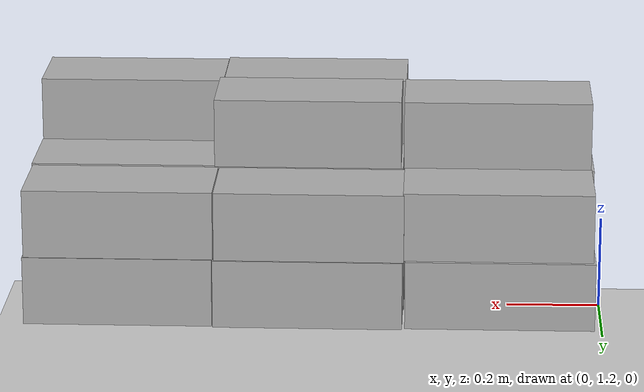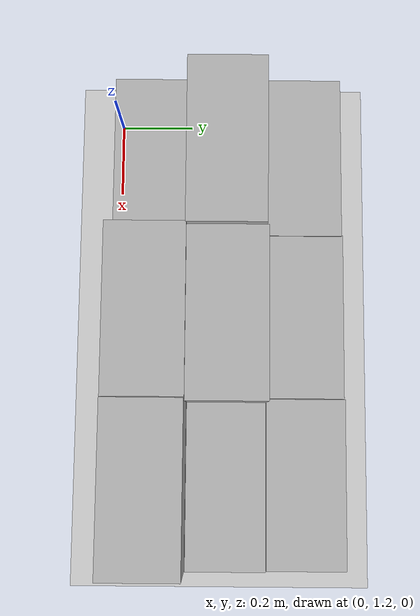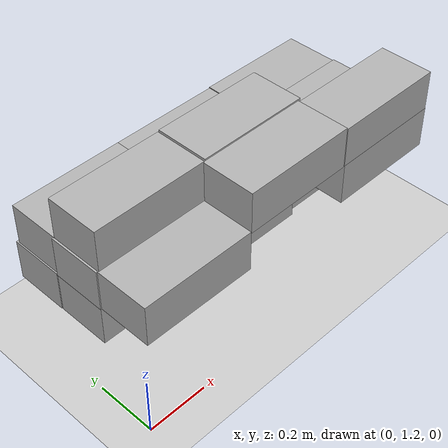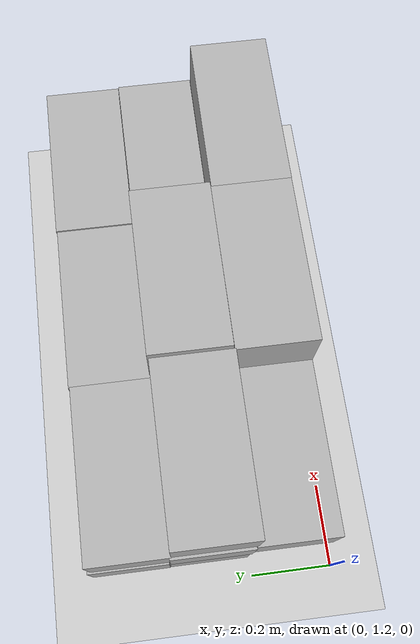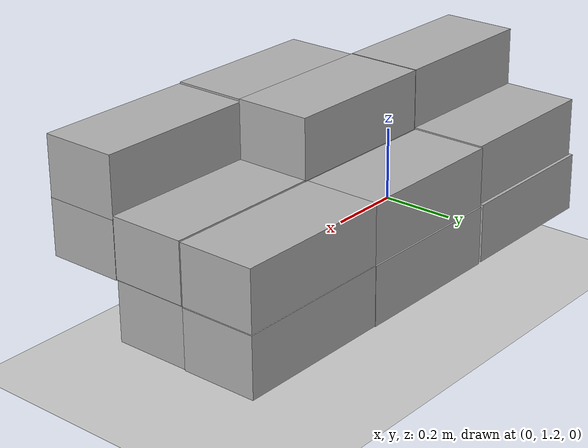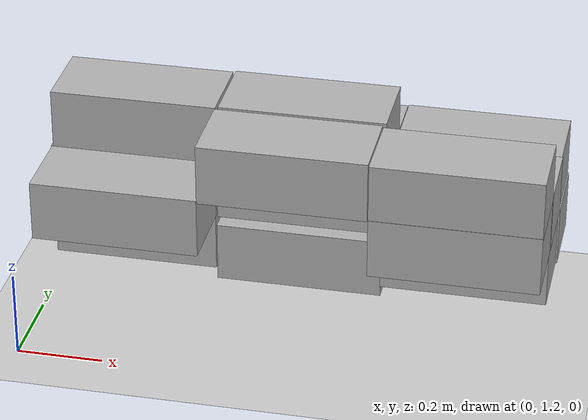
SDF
<sdf version="1.7">
 <world name="default">
  <model name="ground_plane">
   <static>1</static>
   <link name="link">
    <collision name="collision">
     <geometry><plane><normal>0 0 1</normal><size>100 100</size></plane></geometry>
     <surface>
      <contact><collide_bitmask>65535</collide_bitmask></contact>
      <friction><ode><mu>100</mu><mu2>50</mu2></ode></friction>
     </surface>
    </collision>
    <visual name="visual">
     <cast_shadows>0</cast_shadows>
     <geometry><plane><normal>0 0 1</normal><size>100 100</size></plane></geometry>
     <material>
      <script><uri>file://media/materials/scripts/gazebo.material</uri><name>Gazebo/Gray</name></script>
     </material>
    </visual>
   </link>
  </model>
  <model name="box_38_18_14_7">
   <link name="link_0">
    <inertial>
     <mass>2.5</mass>
     <inertia>
      <ixx>0.0108332</ixx>
      <ixy>0</ixy>
      <ixz>0</ixz>
      <iyy>0.0341665</iyy>
      <iyz>0</iyz>
      <izz>0.0368332</izz>
     </inertia>
    </inertial>
    <visual name="visual">
     <geometry><box><size>0.38 0.18 0.14</size></box></geometry>
     <material>
      <lighting>1</lighting>
      <script><uri>file://media/materials/scripts/cardpaper.material</uri><name>cardpaper</name></script>
      <shader type="pixel"><normal_map>__default__</normal_map></shader>
      <ambient>0.3 0.3 0.3 1</ambient>
      <diffuse>0.7 0.7 0.7 1</diffuse>
      <specular>0.01 0.01 0.01 1</specular>
      <emissive>0 0 0 1</emissive>
     </material>
    </visual>
    <collision name="collision">
     <geometry><box><size>0.38 0.18 0.14</size></box></geometry>
     <surface>
      <friction>
       <ode><mu>0.6</mu><mu2>0.6</mu2><fdir1>0 0 0</fdir1><slip1>0</slip1><slip2>0</slip2></ode>
       <torsional>
        <coefficient>1</coefficient>
        <patch_radius>0</patch_radius>
        <surface_radius>0</surface_radius>
        <use_patch_radius>1</use_patch_radius>
        <ode><slip>0</slip></ode>
       </torsional>
      </friction>
      <bounce><restitution_coefficient>0</restitution_coefficient><threshold>1e+06</threshold></bounce>
      <contact>
       <collide_without_contact>0</collide_without_contact>
       <collide_without_contact_bitmask>1</collide_without_contact_bitmask>
       <collide_bitmask>1</collide_bitmask>
       <ode>
        <soft_cfm>0</soft_cfm>
        <soft_erp>0.2</soft_erp>
        <kp>1e+13</kp>
        <kd>1</kd>
        <max_vel>0.01</max_vel>
        <min_depth>0.01</min_depth>
       </ode>
       <bullet>
        <split_impulse>1</split_impulse>
        <split_impulse_penetration_threshold>-0.01</split_impulse_penetration_threshold>
        <soft_cfm>0</soft_cfm>
        <soft_erp>0.2</soft_erp>
        <kp>1e+13</kp>
        <kd>1</kd>
       </bullet>
      </contact>
     </surface>
    </collision>
   </link>
   <static>1</static>
   <pose>0.990184 1.50391 0.216547 2.8e-05 -2e-05 -0.000315</pose>
  </model>
  <model name="box_38_18_14_8">
   <link name="link_0">
    <inertial>
     <mass>2.5</mass>
     <inertia>
      <ixx>0.0108332</ixx>
      <ixy>0</ixy>
      <ixz>0</ixz>
      <iyy>0.0341665</iyy>
      <iyz>0</iyz>
      <izz>0.0368332</izz>
     </inertia>
    </inertial>
    <visual name="visual">
     <geometry><box><size>0.38 0.18 0.14</size></box></geometry>
     <material>
      <lighting>1</lighting>
      <script><uri>file://media/materials/scripts/cardpaper.material</uri><name>cardpaper</name></script>
      <shader type="pixel"><normal_map>__default__</normal_map></shader>
      <ambient>0.3 0.3 0.3 1</ambient>
      <diffuse>0.7 0.7 0.7 1</diffuse>
      <specular>0.01 0.01 0.01 1</specular>
      <emissive>0 0 0 1</emissive>
     </material>
    </visual>
    <collision name="collision">
     <geometry><box><size>0.38 0.18 0.14</size></box></geometry>
     <surface>
      <friction>
       <ode><mu>0.6</mu><mu2>0.6</mu2><fdir1>0 0 0</fdir1><slip1>0</slip1><slip2>0</slip2></ode>
       <torsional>
        <coefficient>1</coefficient>
        <patch_radius>0</patch_radius>
        <surface_radius>0</surface_radius>
        <use_patch_radius>1</use_patch_radius>
        <ode><slip>0</slip></ode>
       </torsional>
      </friction>
      <bounce><restitution_coefficient>0</restitution_coefficient><threshold>1e+06</threshold></bounce>
      <contact>
       <collide_without_contact>0</collide_without_contact>
       <collide_without_contact_bitmask>1</collide_without_contact_bitmask>
       <collide_bitmask>1</collide_bitmask>
       <ode>
        <soft_cfm>0</soft_cfm>
        <soft_erp>0.2</soft_erp>
        <kp>1e+13</kp>
        <kd>1</kd>
        <max_vel>0.01</max_vel>
        <min_depth>0.01</min_depth>
       </ode>
       <bullet>
        <split_impulse>1</split_impulse>
        <split_impulse_penetration_threshold>-0.01</split_impulse_penetration_threshold>
        <soft_cfm>0</soft_cfm>
        <soft_erp>0.2</soft_erp>
        <kp>1e+13</kp>
        <kd>1</kd>
       </bullet>
      </contact>
     </surface>
    </collision>
   </link>
   <static>1</static>
   <pose>0.611731 1.50421 0.192002 2.6e-05 -2e-05 -3.2e-05</pose>
  </model>
  <model name="box_38_18_14_9">
   <link name="link_0">
    <inertial>
     <mass>2.5</mass>
     <inertia>
      <ixx>0.0108332</ixx>
      <ixy>0</ixy>
      <ixz>0</ixz>
      <iyy>0.0341665</iyy>
      <iyz>0</iyz>
      <izz>0.0368332</izz>
     </inertia>
    </inertial>
    <visual name="visual">
     <geometry><box><size>0.38 0.18 0.14</size></box></geometry>
     <material>
      <lighting>1</lighting>
      <script><uri>file://media/materials/scripts/cardpaper.material</uri><name>cardpaper</name></script>
      <shader type="pixel"><normal_map>__default__</normal_map></shader>
      <ambient>0.3 0.3 0.3 1</ambient>
      <diffuse>0.7 0.7 0.7 1</diffuse>
      <specular>0.01 0.01 0.01 1</specular>
      <emissive>0 0 0 1</emissive>
     </material>
    </visual>
    <collision name="collision">
     <geometry><box><size>0.38 0.18 0.14</size></box></geometry>
     <surface>
      <friction>
       <ode><mu>0.6</mu><mu2>0.6</mu2><fdir1>0 0 0</fdir1><slip1>0</slip1><slip2>0</slip2></ode>
       <torsional>
        <coefficient>1</coefficient>
        <patch_radius>0</patch_radius>
        <surface_radius>0</surface_radius>
        <use_patch_radius>1</use_patch_radius>
        <ode><slip>0</slip></ode>
       </torsional>
      </friction>
      <bounce><restitution_coefficient>0</restitution_coefficient><threshold>1e+06</threshold></bounce>
      <contact>
       <collide_without_contact>0</collide_without_contact>
       <collide_without_contact_bitmask>1</collide_without_contact_bitmask>
       <collide_bitmask>1</collide_bitmask>
       <ode>
        <soft_cfm>0</soft_cfm>
        <soft_erp>0.2</soft_erp>
        <kp>1e+13</kp>
        <kd>1</kd>
        <max_vel>0.01</max_vel>
        <min_depth>0.01</min_depth>
       </ode>
       <bullet>
        <split_impulse>1</split_impulse>
        <split_impulse_penetration_threshold>-0.01</split_impulse_penetration_threshold>
        <soft_cfm>0</soft_cfm>
        <soft_erp>0.2</soft_erp>
        <kp>1e+13</kp>
        <kd>1</kd>
       </bullet>
      </contact>
     </surface>
    </collision>
   </link>
   <static>1</static>
   <pose>0.228512 1.50611 0.218021 2.9e-05 -2e-05 0.000472</pose>
  </model>
  <model name="box_38_18_14_10">
   <link name="link_0">
    <inertial>
     <mass>2.5</mass>
     <inertia>
      <ixx>0.0108332</ixx>
      <ixy>0</ixy>
      <ixz>0</ixz>
      <iyy>0.0341665</iyy>
      <iyz>0</iyz>
      <izz>0.0368332</izz>
     </inertia>
    </inertial>
    <visual name="visual">
     <geometry><box><size>0.38 0.18 0.14</size></box></geometry>
     <material>
      <lighting>1</lighting>
      <script><uri>file://media/materials/scripts/cardpaper.material</uri><name>cardpaper</name></script>
      <shader type="pixel"><normal_map>__default__</normal_map></shader>
      <ambient>0.3 0.3 0.3 1</ambient>
      <diffuse>0.7 0.7 0.7 1</diffuse>
      <specular>0.01 0.01 0.01 1</specular>
      <emissive>0 0 0 1</emissive>
     </material>
    </visual>
    <collision name="collision">
     <geometry><box><size>0.38 0.18 0.14</size></box></geometry>
     <surface>
      <friction>
       <ode><mu>0.6</mu><mu2>0.6</mu2><fdir1>0 0 0</fdir1><slip1>0</slip1><slip2>0</slip2></ode>
       <torsional>
        <coefficient>1</coefficient>
        <patch_radius>0</patch_radius>
        <surface_radius>0</surface_radius>
        <use_patch_radius>1</use_patch_radius>
        <ode><slip>0</slip></ode>
       </torsional>
      </friction>
      <bounce><restitution_coefficient>0</restitution_coefficient><threshold>1e+06</threshold></bounce>
      <contact>
       <collide_without_contact>0</collide_without_contact>
       <collide_without_contact_bitmask>1</collide_without_contact_bitmask>
       <collide_bitmask>1</collide_bitmask>
       <ode>
        <soft_cfm>0</soft_cfm>
        <soft_erp>0.2</soft_erp>
        <kp>1e+13</kp>
        <kd>1</kd>
        <max_vel>0.01</max_vel>
        <min_depth>0.01</min_depth>
       </ode>
       <bullet>
        <split_impulse>1</split_impulse>
        <split_impulse_penetration_threshold>-0.01</split_impulse_penetration_threshold>
        <soft_cfm>0</soft_cfm>
        <soft_erp>0.2</soft_erp>
        <kp>1e+13</kp>
        <kd>1</kd>
       </bullet>
      </contact>
     </surface>
    </collision>
   </link>
   <static>1</static>
   <pose>0.993831 1.68679 0.217454 2.6e-05 -2e-05 0.000237</pose>
  </model>
  <model name="box_38_18_14_11">
   <link name="link_0">
    <inertial>
     <mass>2.5</mass>
     <inertia>
      <ixx>0.0108332</ixx>
      <ixy>0</ixy>
      <ixz>0</ixz>
      <iyy>0.0341665</iyy>
      <iyz>0</iyz>
      <izz>0.0368332</izz>
     </inertia>
    </inertial>
    <visual name="visual">
     <geometry><box><size>0.38 0.18 0.14</size></box></geometry>
     <material>
      <lighting>1</lighting>
      <script><uri>file://media/materials/scripts/cardpaper.material</uri><name>cardpaper</name></script>
      <shader type="pixel"><normal_map>__default__</normal_map></shader>
      <ambient>0.3 0.3 0.3 1</ambient>
      <diffuse>0.7 0.7 0.7 1</diffuse>
      <specular>0.01 0.01 0.01 1</specular>
      <emissive>0 0 0 1</emissive>
     </material>
    </visual>
    <collision name="collision">
     <geometry><box><size>0.38 0.18 0.14</size></box></geometry>
     <surface>
      <friction>
       <ode><mu>0.6</mu><mu2>0.6</mu2><fdir1>0 0 0</fdir1><slip1>0</slip1><slip2>0</slip2></ode>
       <torsional>
        <coefficient>1</coefficient>
        <patch_radius>0</patch_radius>
        <surface_radius>0</surface_radius>
        <use_patch_radius>1</use_patch_radius>
        <ode><slip>0</slip></ode>
       </torsional>
      </friction>
      <bounce><restitution_coefficient>0</restitution_coefficient><threshold>1e+06</threshold></bounce>
      <contact>
       <collide_without_contact>0</collide_without_contact>
       <collide_without_contact_bitmask>1</collide_without_contact_bitmask>
       <collide_bitmask>1</collide_bitmask>
       <ode>
        <soft_cfm>0</soft_cfm>
        <soft_erp>0.2</soft_erp>
        <kp>1e+13</kp>
        <kd>1</kd>
        <max_vel>0.01</max_vel>
        <min_depth>0.01</min_depth>
       </ode>
       <bullet>
        <split_impulse>1</split_impulse>
        <split_impulse_penetration_threshold>-0.01</split_impulse_penetration_threshold>
        <soft_cfm>0</soft_cfm>
        <soft_erp>0.2</soft_erp>
        <kp>1e+13</kp>
        <kd>1</kd>
       </bullet>
      </contact>
     </surface>
    </collision>
   </link>
   <static>1</static>
   <pose>0.612289 1.68672 0.215492 2.9e-05 -2.3e-05 -0.001084</pose>
  </model>
  <model name="box_38_18_14_12">
   <link name="link_0">
    <inertial>
     <mass>2.5</mass>
     <inertia>
      <ixx>0.0108332</ixx>
      <ixy>0</ixy>
      <ixz>0</ixz>
      <iyy>0.0341665</iyy>
      <iyz>0</iyz>
      <izz>0.0368332</izz>
     </inertia>
    </inertial>
    <visual name="visual">
     <geometry><box><size>0.38 0.18 0.14</size></box></geometry>
     <material>
      <lighting>1</lighting>
      <script><uri>file://media/materials/scripts/cardpaper.material</uri><name>cardpaper</name></script>
      <shader type="pixel"><normal_map>__default__</normal_map></shader>
      <ambient>0.3 0.3 0.3 1</ambient>
      <diffuse>0.7 0.7 0.7 1</diffuse>
      <specular>0.01 0.01 0.01 1</specular>
      <emissive>0 0 0 1</emissive>
     </material>
    </visual>
    <collision name="collision">
     <geometry><box><size>0.38 0.18 0.14</size></box></geometry>
     <surface>
      <friction>
       <ode><mu>0.6</mu><mu2>0.6</mu2><fdir1>0 0 0</fdir1><slip1>0</slip1><slip2>0</slip2></ode>
       <torsional>
        <coefficient>1</coefficient>
        <patch_radius>0</patch_radius>
        <surface_radius>0</surface_radius>
        <use_patch_radius>1</use_patch_radius>
        <ode><slip>0</slip></ode>
       </torsional>
      </friction>
      <bounce><restitution_coefficient>0</restitution_coefficient><threshold>1e+06</threshold></bounce>
      <contact>
       <collide_without_contact>0</collide_without_contact>
       <collide_without_contact_bitmask>1</collide_without_contact_bitmask>
       <collide_bitmask>1</collide_bitmask>
       <ode>
        <soft_cfm>0</soft_cfm>
        <soft_erp>0.2</soft_erp>
        <kp>1e+13</kp>
        <kd>1</kd>
        <max_vel>0.01</max_vel>
        <min_depth>0.01</min_depth>
       </ode>
       <bullet>
        <split_impulse>1</split_impulse>
        <split_impulse_penetration_threshold>-0.01</split_impulse_penetration_threshold>
        <soft_cfm>0</soft_cfm>
        <soft_erp>0.2</soft_erp>
        <kp>1e+13</kp>
        <kd>1</kd>
       </bullet>
      </contact>
     </surface>
    </collision>
   </link>
   <static>1</static>
   <pose>0.226986 1.68817 0.218375 2.7e-05 -2.1e-05 0.000476</pose>
  </model>
  <model name="box_38_18_14_16">
   <link name="link_0">
    <inertial>
     <mass>2.5</mass>
     <inertia>
      <ixx>0.0108332</ixx>
      <ixy>0</ixy>
      <ixz>0</ixz>
      <iyy>0.0341665</iyy>
      <iyz>0</iyz>
      <izz>0.0368332</izz>
     </inertia>
    </inertial>
    <visual name="visual">
     <geometry><box><size>0.38 0.18 0.14</size></box></geometry>
     <material>
      <lighting>1</lighting>
      <script><uri>file://media/materials/scripts/cardpaper.material</uri><name>cardpaper</name></script>
      <shader type="pixel"><normal_map>__default__</normal_map></shader>
      <ambient>0.3 0.3 0.3 1</ambient>
      <diffuse>0.7 0.7 0.7 1</diffuse>
      <specular>0.01 0.01 0.01 1</specular>
      <emissive>0 0 0 1</emissive>
     </material>
    </visual>
    <collision name="collision">
     <geometry><box><size>0.38 0.18 0.14</size></box></geometry>
     <surface>
      <friction>
       <ode><mu>0.6</mu><mu2>0.6</mu2><fdir1>0 0 0</fdir1><slip1>0</slip1><slip2>0</slip2></ode>
       <torsional>
        <coefficient>1</coefficient>
        <patch_radius>0</patch_radius>
        <surface_radius>0</surface_radius>
        <use_patch_radius>1</use_patch_radius>
        <ode><slip>0</slip></ode>
       </torsional>
      </friction>
      <bounce><restitution_coefficient>0</restitution_coefficient><threshold>1e+06</threshold></bounce>
      <contact>
       <collide_without_contact>0</collide_without_contact>
       <collide_without_contact_bitmask>1</collide_without_contact_bitmask>
       <collide_bitmask>1</collide_bitmask>
       <ode>
        <soft_cfm>0</soft_cfm>
        <soft_erp>0.2</soft_erp>
        <kp>1e+13</kp>
        <kd>1</kd>
        <max_vel>0.01</max_vel>
        <min_depth>0.01</min_depth>
       </ode>
       <bullet>
        <split_impulse>1</split_impulse>
        <split_impulse_penetration_threshold>-0.01</split_impulse_penetration_threshold>
        <soft_cfm>0</soft_cfm>
        <soft_erp>0.2</soft_erp>
        <kp>1e+13</kp>
        <kd>1</kd>
       </bullet>
      </contact>
     </surface>
    </collision>
   </link>
   <static>1</static>
   <pose>0.230239 1.32434 0.357358 2.8e-05 -3e-06 -0.000162</pose>
  </model>
  <model name="box_38_18_14_18">
   <link name="link_0">
    <inertial>
     <mass>2.5</mass>
     <inertia>
      <ixx>0.0108332</ixx>
      <ixy>0</ixy>
      <ixz>0</ixz>
      <iyy>0.0341665</iyy>
      <iyz>0</iyz>
      <izz>0.0368332</izz>
     </inertia>
    </inertial>
    <visual name="visual">
     <geometry><box><size>0.38 0.18 0.14</size></box></geometry>
     <material>
      <lighting>1</lighting>
      <script><uri>file://media/materials/scripts/cardpaper.material</uri><name>cardpaper</name></script>
      <shader type="pixel"><normal_map>__default__</normal_map></shader>
      <ambient>0.3 0.3 0.3 1</ambient>
      <diffuse>0.7 0.7 0.7 1</diffuse>
      <specular>0.01 0.01 0.01 1</specular>
      <emissive>0 0 0 1</emissive>
     </material>
    </visual>
    <collision name="collision">
     <geometry><box><size>0.38 0.18 0.14</size></box></geometry>
     <surface>
      <friction>
       <ode><mu>0.6</mu><mu2>0.6</mu2><fdir1>0 0 0</fdir1><slip1>0</slip1><slip2>0</slip2></ode>
       <torsional>
        <coefficient>1</coefficient>
        <patch_radius>0</patch_radius>
        <surface_radius>0</surface_radius>
        <use_patch_radius>1</use_patch_radius>
        <ode><slip>0</slip></ode>
       </torsional>
      </friction>
      <bounce><restitution_coefficient>0</restitution_coefficient><threshold>1e+06</threshold></bounce>
      <contact>
       <collide_without_contact>0</collide_without_contact>
       <collide_without_contact_bitmask>1</collide_without_contact_bitmask>
       <collide_bitmask>1</collide_bitmask>
       <ode>
        <soft_cfm>0</soft_cfm>
        <soft_erp>0.2</soft_erp>
        <kp>1e+13</kp>
        <kd>1</kd>
        <max_vel>0.01</max_vel>
        <min_depth>0.01</min_depth>
       </ode>
       <bullet>
        <split_impulse>1</split_impulse>
        <split_impulse_penetration_threshold>-0.01</split_impulse_penetration_threshold>
        <soft_cfm>0</soft_cfm>
        <soft_erp>0.2</soft_erp>
        <kp>1e+13</kp>
        <kd>1</kd>
       </bullet>
      </contact>
     </surface>
    </collision>
   </link>
   <static>1</static>
   <pose>0.992285 1.32172 0.356242 0.000384 -6e-05 -0.000365</pose>
  </model>
  <model name="box_38_18_14_19">
   <link name="link_0">
    <inertial>
     <mass>2.5</mass>
     <inertia>
      <ixx>0.0108332</ixx>
      <ixy>0</ixy>
      <ixz>0</ixz>
      <iyy>0.0341665</iyy>
      <iyz>0</iyz>
      <izz>0.0368332</izz>
     </inertia>
    </inertial>
    <visual name="visual">
     <geometry><box><size>0.38 0.18 0.14</size></box></geometry>
     <material>
      <lighting>1</lighting>
      <script><uri>file://media/materials/scripts/cardpaper.material</uri><name>cardpaper</name></script>
      <shader type="pixel"><normal_map>__default__</normal_map></shader>
      <ambient>0.3 0.3 0.3 1</ambient>
      <diffuse>0.7 0.7 0.7 1</diffuse>
      <specular>0.01 0.01 0.01 1</specular>
      <emissive>0 0 0 1</emissive>
     </material>
    </visual>
    <collision name="collision">
     <geometry><box><size>0.38 0.18 0.14</size></box></geometry>
     <surface>
      <friction>
       <ode><mu>0.6</mu><mu2>0.6</mu2><fdir1>0 0 0</fdir1><slip1>0</slip1><slip2>0</slip2></ode>
       <torsional>
        <coefficient>1</coefficient>
        <patch_radius>0</patch_radius>
        <surface_radius>0</surface_radius>
        <use_patch_radius>1</use_patch_radius>
        <ode><slip>0</slip></ode>
       </torsional>
      </friction>
      <bounce><restitution_coefficient>0</restitution_coefficient><threshold>1e+06</threshold></bounce>
      <contact>
       <collide_without_contact>0</collide_without_contact>
       <collide_without_contact_bitmask>1</collide_without_contact_bitmask>
       <collide_bitmask>1</collide_bitmask>
       <ode>
        <soft_cfm>0</soft_cfm>
        <soft_erp>0.2</soft_erp>
        <kp>1e+13</kp>
        <kd>1</kd>
        <max_vel>0.01</max_vel>
        <min_depth>0.01</min_depth>
       </ode>
       <bullet>
        <split_impulse>1</split_impulse>
        <split_impulse_penetration_threshold>-0.01</split_impulse_penetration_threshold>
        <soft_cfm>0</soft_cfm>
        <soft_erp>0.2</soft_erp>
        <kp>1e+13</kp>
        <kd>1</kd>
       </bullet>
      </contact>
     </surface>
    </collision>
   </link>
   <static>1</static>
   <pose>0.614318 1.50153 0.357287 -0.000282 1e-05 6e-05</pose>
  </model>
  <model name="box_38_18_14_20">
   <link name="link_0">
    <inertial>
     <mass>2.5</mass>
     <inertia>
      <ixx>0.0108332</ixx>
      <ixy>0</ixy>
      <ixz>0</ixz>
      <iyy>0.0341665</iyy>
      <iyz>0</iyz>
      <izz>0.0368332</izz>
     </inertia>
    </inertial>
    <visual name="visual">
     <geometry><box><size>0.38 0.18 0.14</size></box></geometry>
     <material>
      <lighting>1</lighting>
      <script><uri>file://media/materials/scripts/cardpaper.material</uri><name>cardpaper</name></script>
      <shader type="pixel"><normal_map>__default__</normal_map></shader>
      <ambient>0.3 0.3 0.3 1</ambient>
      <diffuse>0.7 0.7 0.7 1</diffuse>
      <specular>0.01 0.01 0.01 1</specular>
      <emissive>0 0 0 1</emissive>
     </material>
    </visual>
    <collision name="collision">
     <geometry><box><size>0.38 0.18 0.14</size></box></geometry>
     <surface>
      <friction>
       <ode><mu>0.6</mu><mu2>0.6</mu2><fdir1>0 0 0</fdir1><slip1>0</slip1><slip2>0</slip2></ode>
       <torsional>
        <coefficient>1</coefficient>
        <patch_radius>0</patch_radius>
        <surface_radius>0</surface_radius>
        <use_patch_radius>1</use_patch_radius>
        <ode><slip>0</slip></ode>
       </torsional>
      </friction>
      <bounce><restitution_coefficient>0</restitution_coefficient><threshold>1e+06</threshold></bounce>
      <contact>
       <collide_without_contact>0</collide_without_contact>
       <collide_without_contact_bitmask>1</collide_without_contact_bitmask>
       <collide_bitmask>1</collide_bitmask>
       <ode>
        <soft_cfm>0</soft_cfm>
        <soft_erp>0.2</soft_erp>
        <kp>1e+13</kp>
        <kd>1</kd>
        <max_vel>0.01</max_vel>
        <min_depth>0.01</min_depth>
       </ode>
       <bullet>
        <split_impulse>1</split_impulse>
        <split_impulse_penetration_threshold>-0.01</split_impulse_penetration_threshold>
        <soft_cfm>0</soft_cfm>
        <soft_erp>0.2</soft_erp>
        <kp>1e+13</kp>
        <kd>1</kd>
       </bullet>
      </contact>
     </surface>
    </collision>
   </link>
   <static>1</static>
   <pose>0.226703 1.50467 0.35593 0.000115 -5.1e-05 0.000608</pose>
  </model>
  <model name="box_38_18_14_21">
   <link name="link_0">
    <inertial>
     <mass>2.5</mass>
     <inertia>
      <ixx>0.0108332</ixx>
      <ixy>0</ixy>
      <ixz>0</ixz>
      <iyy>0.0341665</iyy>
      <iyz>0</iyz>
      <izz>0.0368332</izz>
     </inertia>
    </inertial>
    <visual name="visual">
     <geometry><box><size>0.38 0.18 0.14</size></box></geometry>
     <material>
      <lighting>1</lighting>
      <script><uri>file://media/materials/scripts/cardpaper.material</uri><name>cardpaper</name></script>
      <shader type="pixel"><normal_map>__default__</normal_map></shader>
      <ambient>0.3 0.3 0.3 1</ambient>
      <diffuse>0.7 0.7 0.7 1</diffuse>
      <specular>0.01 0.01 0.01 1</specular>
      <emissive>0 0 0 1</emissive>
     </material>
    </visual>
    <collision name="collision">
     <geometry><box><size>0.38 0.18 0.14</size></box></geometry>
     <surface>
      <friction>
       <ode><mu>0.6</mu><mu2>0.6</mu2><fdir1>0 0 0</fdir1><slip1>0</slip1><slip2>0</slip2></ode>
       <torsional>
        <coefficient>1</coefficient>
        <patch_radius>0</patch_radius>
        <surface_radius>0</surface_radius>
        <use_patch_radius>1</use_patch_radius>
        <ode><slip>0</slip></ode>
       </torsional>
      </friction>
      <bounce><restitution_coefficient>0</restitution_coefficient><threshold>1e+06</threshold></bounce>
      <contact>
       <collide_without_contact>0</collide_without_contact>
       <collide_without_contact_bitmask>1</collide_without_contact_bitmask>
       <collide_bitmask>1</collide_bitmask>
       <ode>
        <soft_cfm>0</soft_cfm>
        <soft_erp>0.2</soft_erp>
        <kp>1e+13</kp>
        <kd>1</kd>
        <max_vel>0.01</max_vel>
        <min_depth>0.01</min_depth>
       </ode>
       <bullet>
        <split_impulse>1</split_impulse>
        <split_impulse_penetration_threshold>-0.01</split_impulse_penetration_threshold>
        <soft_cfm>0</soft_cfm>
        <soft_erp>0.2</soft_erp>
        <kp>1e+13</kp>
        <kd>1</kd>
       </bullet>
      </contact>
     </surface>
    </collision>
   </link>
   <static>1</static>
   <pose>0.993031 1.50351 0.359269 9e-06 -2.3e-05 0.00038</pose>
  </model>
  <model name="box_38_18_14_22">
   <link name="link_0">
    <inertial>
     <mass>2.5</mass>
     <inertia>
      <ixx>0.0108332</ixx>
      <ixy>0</ixy>
      <ixz>0</ixz>
      <iyy>0.0341665</iyy>
      <iyz>0</iyz>
      <izz>0.0368332</izz>
     </inertia>
    </inertial>
    <visual name="visual">
     <geometry><box><size>0.38 0.18 0.14</size></box></geometry>
     <material>
      <lighting>1</lighting>
      <script><uri>file://media/materials/scripts/cardpaper.material</uri><name>cardpaper</name></script>
      <shader type="pixel"><normal_map>__default__</normal_map></shader>
      <ambient>0.3 0.3 0.3 1</ambient>
      <diffuse>0.7 0.7 0.7 1</diffuse>
      <specular>0.01 0.01 0.01 1</specular>
      <emissive>0 0 0 1</emissive>
     </material>
    </visual>
    <collision name="collision">
     <geometry><box><size>0.38 0.18 0.14</size></box></geometry>
     <surface>
      <friction>
       <ode><mu>0.6</mu><mu2>0.6</mu2><fdir1>0 0 0</fdir1><slip1>0</slip1><slip2>0</slip2></ode>
       <torsional>
        <coefficient>1</coefficient>
        <patch_radius>0</patch_radius>
        <surface_radius>0</surface_radius>
        <use_patch_radius>1</use_patch_radius>
        <ode><slip>0</slip></ode>
       </torsional>
      </friction>
      <bounce><restitution_coefficient>0</restitution_coefficient><threshold>1e+06</threshold></bounce>
      <contact>
       <collide_without_contact>0</collide_without_contact>
       <collide_without_contact_bitmask>1</collide_without_contact_bitmask>
       <collide_bitmask>1</collide_bitmask>
       <ode>
        <soft_cfm>0</soft_cfm>
        <soft_erp>0.2</soft_erp>
        <kp>1e+13</kp>
        <kd>1</kd>
        <max_vel>0.01</max_vel>
        <min_depth>0.01</min_depth>
       </ode>
       <bullet>
        <split_impulse>1</split_impulse>
        <split_impulse_penetration_threshold>-0.01</split_impulse_penetration_threshold>
        <soft_cfm>0</soft_cfm>
        <soft_erp>0.2</soft_erp>
        <kp>1e+13</kp>
        <kd>1</kd>
       </bullet>
      </contact>
     </surface>
    </collision>
   </link>
   <static>1</static>
   <pose>0.609397 1.68297 0.355103 0.000642 -0.000878 -0.000825</pose>
  </model>
  <model name="box_38_18_14_23">
   <link name="link_0">
    <inertial>
     <mass>2.5</mass>
     <inertia>
      <ixx>0.0108332</ixx>
      <ixy>0</ixy>
      <ixz>0</ixz>
      <iyy>0.0341665</iyy>
      <iyz>0</iyz>
      <izz>0.0368332</izz>
     </inertia>
    </inertial>
    <visual name="visual">
     <geometry><box><size>0.38 0.18 0.14</size></box></geometry>
     <material>
      <lighting>1</lighting>
      <script><uri>file://media/materials/scripts/cardpaper.material</uri><name>cardpaper</name></script>
      <shader type="pixel"><normal_map>__default__</normal_map></shader>
      <ambient>0.3 0.3 0.3 1</ambient>
      <diffuse>0.7 0.7 0.7 1</diffuse>
      <specular>0.01 0.01 0.01 1</specular>
      <emissive>0 0 0 1</emissive>
     </material>
    </visual>
    <collision name="collision">
     <geometry><box><size>0.38 0.18 0.14</size></box></geometry>
     <surface>
      <friction>
       <ode><mu>0.6</mu><mu2>0.6</mu2><fdir1>0 0 0</fdir1><slip1>0</slip1><slip2>0</slip2></ode>
       <torsional>
        <coefficient>1</coefficient>
        <patch_radius>0</patch_radius>
        <surface_radius>0</surface_radius>
        <use_patch_radius>1</use_patch_radius>
        <ode><slip>0</slip></ode>
       </torsional>
      </friction>
      <bounce><restitution_coefficient>0</restitution_coefficient><threshold>1e+06</threshold></bounce>
      <contact>
       <collide_without_contact>0</collide_without_contact>
       <collide_without_contact_bitmask>1</collide_without_contact_bitmask>
       <collide_bitmask>1</collide_bitmask>
       <ode>
        <soft_cfm>0</soft_cfm>
        <soft_erp>0.2</soft_erp>
        <kp>1e+13</kp>
        <kd>1</kd>
        <max_vel>0.01</max_vel>
        <min_depth>0.01</min_depth>
       </ode>
       <bullet>
        <split_impulse>1</split_impulse>
        <split_impulse_penetration_threshold>-0.01</split_impulse_penetration_threshold>
        <soft_cfm>0</soft_cfm>
        <soft_erp>0.2</soft_erp>
        <kp>1e+13</kp>
        <kd>1</kd>
       </bullet>
      </contact>
     </surface>
    </collision>
   </link>
   <static>1</static>
   <pose>0.991085 1.68467 0.3565 2.9e-05 0.000187 -0.000653</pose>
  </model>
  <model name="box_38_18_14_24">
   <link name="link_0">
    <inertial>
     <mass>2.5</mass>
     <inertia>
      <ixx>0.0108332</ixx>
      <ixy>0</ixy>
      <ixz>0</ixz>
      <iyy>0.0341665</iyy>
      <iyz>0</iyz>
      <izz>0.0368332</izz>
     </inertia>
    </inertial>
    <visual name="visual">
     <geometry><box><size>0.38 0.18 0.14</size></box></geometry>
     <material>
      <lighting>1</lighting>
      <script><uri>file://media/materials/scripts/cardpaper.material</uri><name>cardpaper</name></script>
      <shader type="pixel"><normal_map>__default__</normal_map></shader>
      <ambient>0.3 0.3 0.3 1</ambient>
      <diffuse>0.7 0.7 0.7 1</diffuse>
      <specular>0.01 0.01 0.01 1</specular>
      <emissive>0 0 0 1</emissive>
     </material>
    </visual>
    <collision name="collision">
     <geometry><box><size>0.38 0.18 0.14</size></box></geometry>
     <surface>
      <friction>
       <ode><mu>0.6</mu><mu2>0.6</mu2><fdir1>0 0 0</fdir1><slip1>0</slip1><slip2>0</slip2></ode>
       <torsional>
        <coefficient>1</coefficient>
        <patch_radius>0</patch_radius>
        <surface_radius>0</surface_radius>
        <use_patch_radius>1</use_patch_radius>
        <ode><slip>0</slip></ode>
       </torsional>
      </friction>
      <bounce><restitution_coefficient>0</restitution_coefficient><threshold>1e+06</threshold></bounce>
      <contact>
       <collide_without_contact>0</collide_without_contact>
       <collide_without_contact_bitmask>1</collide_without_contact_bitmask>
       <collide_bitmask>1</collide_bitmask>
       <ode>
        <soft_cfm>0</soft_cfm>
        <soft_erp>0.2</soft_erp>
        <kp>1e+13</kp>
        <kd>1</kd>
        <max_vel>0.01</max_vel>
        <min_depth>0.01</min_depth>
       </ode>
       <bullet>
        <split_impulse>1</split_impulse>
        <split_impulse_penetration_threshold>-0.01</split_impulse_penetration_threshold>
        <soft_cfm>0</soft_cfm>
        <soft_erp>0.2</soft_erp>
        <kp>1e+13</kp>
        <kd>1</kd>
       </bullet>
      </contact>
     </surface>
    </collision>
   </link>
   <static>1</static>
   <pose>0.231492 1.68003 0.358144 1e-05 -4.5e-05 0.000836</pose>
  </model>
  <model name="box_38_18_14_25">
   <link name="link_0">
    <inertial>
     <mass>2.5</mass>
     <inertia>
      <ixx>0.0108332</ixx>
      <ixy>0</ixy>
      <ixz>0</ixz>
      <iyy>0.0341665</iyy>
      <iyz>0</iyz>
      <izz>0.0368332</izz>
     </inertia>
    </inertial>
    <visual name="visual">
     <geometry><box><size>0.38 0.18 0.14</size></box></geometry>
     <material>
      <lighting>1</lighting>
      <script><uri>file://media/materials/scripts/cardpaper.material</uri><name>cardpaper</name></script>
      <shader type="pixel"><normal_map>__default__</normal_map></shader>
      <ambient>0.3 0.3 0.3 1</ambient>
      <diffuse>0.7 0.7 0.7 1</diffuse>
      <specular>0.01 0.01 0.01 1</specular>
      <emissive>0 0 0 1</emissive>
     </material>
    </visual>
    <collision name="collision">
     <geometry><box><size>0.38 0.18 0.14</size></box></geometry>
     <surface>
      <friction>
       <ode><mu>0.6</mu><mu2>0.6</mu2><fdir1>0 0 0</fdir1><slip1>0</slip1><slip2>0</slip2></ode>
       <torsional>
        <coefficient>1</coefficient>
        <patch_radius>0</patch_radius>
        <surface_radius>0</surface_radius>
        <use_patch_radius>1</use_patch_radius>
        <ode><slip>0</slip></ode>
       </torsional>
      </friction>
      <bounce><restitution_coefficient>0</restitution_coefficient><threshold>1e+06</threshold></bounce>
      <contact>
       <collide_without_contact>0</collide_without_contact>
       <collide_without_contact_bitmask>1</collide_without_contact_bitmask>
       <collide_bitmask>1</collide_bitmask>
       <ode>
        <soft_cfm>0</soft_cfm>
        <soft_erp>0.2</soft_erp>
        <kp>1e+13</kp>
        <kd>1</kd>
        <max_vel>0.01</max_vel>
        <min_depth>0.01</min_depth>
       </ode>
       <bullet>
        <split_impulse>1</split_impulse>
        <split_impulse_penetration_threshold>-0.01</split_impulse_penetration_threshold>
        <soft_cfm>0</soft_cfm>
        <soft_erp>0.2</soft_erp>
        <kp>1e+13</kp>
        <kd>1</kd>
       </bullet>
      </contact>
     </surface>
    </collision>
   </link>
   <static>1</static>
   <pose>0.61078 1.3237 0.492563 0.000172 0.000213 0.000795</pose>
  </model>
  <model name="box_38_18_14_26">
   <link name="link_0">
    <inertial>
     <mass>2.5</mass>
     <inertia>
      <ixx>0.0108332</ixx>
      <ixy>0</ixy>
      <ixz>0</ixz>
      <iyy>0.0341665</iyy>
      <iyz>0</iyz>
      <izz>0.0368332</izz>
     </inertia>
    </inertial>
    <visual name="visual">
     <geometry><box><size>0.38 0.18 0.14</size></box></geometry>
     <material>
      <lighting>1</lighting>
      <script><uri>file://media/materials/scripts/cardpaper.material</uri><name>cardpaper</name></script>
      <shader type="pixel"><normal_map>__default__</normal_map></shader>
      <ambient>0.3 0.3 0.3 1</ambient>
      <diffuse>0.7 0.7 0.7 1</diffuse>
      <specular>0.01 0.01 0.01 1</specular>
      <emissive>0 0 0 1</emissive>
     </material>
    </visual>
    <collision name="collision">
     <geometry><box><size>0.38 0.18 0.14</size></box></geometry>
     <surface>
      <friction>
       <ode><mu>0.6</mu><mu2>0.6</mu2><fdir1>0 0 0</fdir1><slip1>0</slip1><slip2>0</slip2></ode>
       <torsional>
        <coefficient>1</coefficient>
        <patch_radius>0</patch_radius>
        <surface_radius>0</surface_radius>
        <use_patch_radius>1</use_patch_radius>
        <ode><slip>0</slip></ode>
       </torsional>
      </friction>
      <bounce><restitution_coefficient>0</restitution_coefficient><threshold>1e+06</threshold></bounce>
      <contact>
       <collide_without_contact>0</collide_without_contact>
       <collide_without_contact_bitmask>1</collide_without_contact_bitmask>
       <collide_bitmask>1</collide_bitmask>
       <ode>
        <soft_cfm>0</soft_cfm>
        <soft_erp>0.2</soft_erp>
        <kp>1e+13</kp>
        <kd>1</kd>
        <max_vel>0.01</max_vel>
        <min_depth>0.01</min_depth>
       </ode>
       <bullet>
        <split_impulse>1</split_impulse>
        <split_impulse_penetration_threshold>-0.01</split_impulse_penetration_threshold>
        <soft_cfm>0</soft_cfm>
        <soft_erp>0.2</soft_erp>
        <kp>1e+13</kp>
        <kd>1</kd>
       </bullet>
      </contact>
     </surface>
    </collision>
   </link>
   <static>1</static>
   <pose>0.992469 1.32241 0.488897 0.000191 -4.7e-05 -0.000241</pose>
  </model>
  <model name="box_38_18_14_33">
   <link name="link_0">
    <inertial>
     <mass>2.5</mass>
     <inertia>
      <ixx>0.0108332</ixx>
      <ixy>0</ixy>
      <ixz>0</ixz>
      <iyy>0.0341665</iyy>
      <iyz>0</iyz>
      <izz>0.0368332</izz>
     </inertia>
    </inertial>
    <visual name="visual">
     <geometry><box><size>0.38 0.18 0.14</size></box></geometry>
     <material>
      <lighting>1</lighting>
      <script><uri>file://media/materials/scripts/cardpaper.material</uri><name>cardpaper</name></script>
      <shader type="pixel"><normal_map>__default__</normal_map></shader>
      <ambient>0.3 0.3 0.3 1</ambient>
      <diffuse>0.7 0.7 0.7 1</diffuse>
      <specular>0.01 0.01 0.01 1</specular>
      <emissive>0 0 0 1</emissive>
     </material>
    </visual>
    <collision name="collision">
     <geometry><box><size>0.38 0.18 0.14</size></box></geometry>
     <surface>
      <friction>
       <ode><mu>0.6</mu><mu2>0.6</mu2><fdir1>0 0 0</fdir1><slip1>0</slip1><slip2>0</slip2></ode>
       <torsional>
        <coefficient>1</coefficient>
        <patch_radius>0</patch_radius>
        <surface_radius>0</surface_radius>
        <use_patch_radius>1</use_patch_radius>
        <ode><slip>0</slip></ode>
       </torsional>
      </friction>
      <bounce><restitution_coefficient>0</restitution_coefficient><threshold>1e+06</threshold></bounce>
      <contact>
       <collide_without_contact>0</collide_without_contact>
       <collide_without_contact_bitmask>1</collide_without_contact_bitmask>
       <collide_bitmask>1</collide_bitmask>
       <ode>
        <soft_cfm>0</soft_cfm>
        <soft_erp>0.2</soft_erp>
        <kp>1e+13</kp>
        <kd>1</kd>
        <max_vel>0.01</max_vel>
        <min_depth>0.01</min_depth>
       </ode>
       <bullet>
        <split_impulse>1</split_impulse>
        <split_impulse_penetration_threshold>-0.01</split_impulse_penetration_threshold>
        <soft_cfm>0</soft_cfm>
        <soft_erp>0.2</soft_erp>
        <kp>1e+13</kp>
        <kd>1</kd>
       </bullet>
      </contact>
     </surface>
    </collision>
   </link>
   <static>1</static>
   <pose>0.618859 1.50423 0.497377 0 -0 0</pose>
  </model>
  <model name="box_38_18_14_34">
   <link name="link_0">
    <inertial>
     <mass>2.5</mass>
     <inertia>
      <ixx>0.0108332</ixx>
      <ixy>0</ixy>
      <ixz>0</ixz>
      <iyy>0.0341665</iyy>
      <iyz>0</iyz>
      <izz>0.0368332</izz>
     </inertia>
    </inertial>
    <visual name="visual">
     <geometry><box><size>0.38 0.18 0.14</size></box></geometry>
     <material>
      <lighting>1</lighting>
      <script><uri>file://media/materials/scripts/cardpaper.material</uri><name>cardpaper</name></script>
      <shader type="pixel"><normal_map>__default__</normal_map></shader>
      <ambient>0.3 0.3 0.3 1</ambient>
      <diffuse>0.7 0.7 0.7 1</diffuse>
      <specular>0.01 0.01 0.01 1</specular>
      <emissive>0 0 0 1</emissive>
     </material>
    </visual>
    <collision name="collision">
     <geometry><box><size>0.38 0.18 0.14</size></box></geometry>
     <surface>
      <friction>
       <ode><mu>0.6</mu><mu2>0.6</mu2><fdir1>0 0 0</fdir1><slip1>0</slip1><slip2>0</slip2></ode>
       <torsional>
        <coefficient>1</coefficient>
        <patch_radius>0</patch_radius>
        <surface_radius>0</surface_radius>
        <use_patch_radius>1</use_patch_radius>
        <ode><slip>0</slip></ode>
       </torsional>
      </friction>
      <bounce><restitution_coefficient>0</restitution_coefficient><threshold>1e+06</threshold></bounce>
      <contact>
       <collide_without_contact>0</collide_without_contact>
       <collide_without_contact_bitmask>1</collide_without_contact_bitmask>
       <collide_bitmask>1</collide_bitmask>
       <ode>
        <soft_cfm>0</soft_cfm>
        <soft_erp>0.2</soft_erp>
        <kp>1e+13</kp>
        <kd>1</kd>
        <max_vel>0.01</max_vel>
        <min_depth>0.01</min_depth>
       </ode>
       <bullet>
        <split_impulse>1</split_impulse>
        <split_impulse_penetration_threshold>-0.01</split_impulse_penetration_threshold>
        <soft_cfm>0</soft_cfm>
        <soft_erp>0.2</soft_erp>
        <kp>1e+13</kp>
        <kd>1</kd>
       </bullet>
      </contact>
     </surface>
    </collision>
   </link>
   <static>1</static>
   <pose>0.232965 1.50107 0.496022 0 -0 0</pose>
  </model>
 </world>
</sdf>
